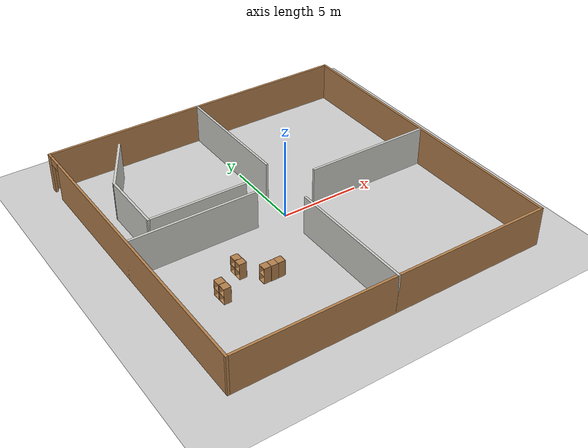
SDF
<sdf version="1.6">
 <world name="default">
  <model name="ground_plane">
   <static>1</static>
   <link name="link">
    <collision name="collision">
     <geometry><plane><normal>0 0 1</normal><size>100 100</size></plane></geometry>
     <surface>
      <contact><collide_bitmask>65535</collide_bitmask></contact>
      <friction><ode><mu>100</mu><mu2>50</mu2></ode></friction>
     </surface>
    </collision>
    <visual name="visual">
     <cast_shadows>0</cast_shadows>
     <geometry><plane><normal>0 0 1</normal><size>100 100</size></plane></geometry>
     <material>
      <script><uri>file://media/materials/scripts/gazebo.material</uri><name>Gazebo/Grey</name></script>
     </material>
    </visual>
   </link>
  </model>
  <model name="Sample_house">
   <link name="Wall_14">
    <collision name="Wall_14_Collision">
     <geometry><box><size>8.15 0.15 2.5</size></box></geometry>
     <pose>0 0 1.25 0 -0 0</pose>
    </collision>
    <visual name="Wall_14_Visual">
     <pose>0 0 1.25 0 -0 0</pose>
     <geometry><box><size>8.15 0.15 2.5</size></box></geometry>
     <material>
      <script><uri>file://media/materials/scripts/gazebo.material</uri><name>Gazebo/CeilingTiled</name></script>
      <ambient>0.435294 0.796078 0.67451 1</ambient>
     </material>
     <meta><layer>0</layer></meta>
    </visual>
    <pose>0 6 0 0 -0 -1.5708</pose>
   </link>
   <link name="Wall_16">
    <collision name="Wall_16_Collision">
     <geometry><box><size>8.15 0.15 2.5</size></box></geometry>
     <pose>0 0 1.25 0 -0 0</pose>
    </collision>
    <visual name="Wall_16_Visual">
     <pose>0 0 1.25 0 -0 0</pose>
     <geometry><box><size>8.15 0.15 2.5</size></box></geometry>
     <material>
      <script><uri>file://media/materials/scripts/gazebo.material</uri><name>Gazebo/CeilingTiled</name></script>
      <ambient>0.435294 0.796078 0.67451 1</ambient>
     </material>
     <meta><layer>0</layer></meta>
    </visual>
    <pose>-6 0 0 0 -0 0</pose>
   </link>
   <link name="Wall_18">
    <collision name="Wall_18_Collision">
     <geometry><box><size>8.15 0.15 2.5</size></box></geometry>
     <pose>0 0 1.25 0 -0 0</pose>
    </collision>
    <visual name="Wall_18_Visual">
     <pose>0 0 1.25 0 -0 0</pose>
     <geometry><box><size>8.15 0.15 2.5</size></box></geometry>
     <material>
      <script><uri>file://media/materials/scripts/gazebo.material</uri><name>Gazebo/CeilingTiled</name></script>
      <ambient>0.435294 0.796078 0.67451 1</ambient>
     </material>
     <meta><layer>0</layer></meta>
    </visual>
    <pose>0 -6 0 0 -0 1.5708</pose>
   </link>
   <link name="Wall_20">
    <collision name="Wall_20_Collision">
     <geometry><box><size>8.15 0.15 2.5</size></box></geometry>
     <pose>0 0 1.25 0 -0 0</pose>
    </collision>
    <visual name="Wall_20_Visual">
     <pose>0 0 1.25 0 -0 0</pose>
     <geometry><box><size>8.15 0.15 2.5</size></box></geometry>
     <material>
      <script><uri>file://media/materials/scripts/gazebo.material</uri><name>Gazebo/CeilingTiled</name></script>
      <ambient>0.435294 0.796078 0.67451 1</ambient>
     </material>
     <meta><layer>0</layer></meta>
    </visual>
    <pose>6 0 0 0 -0 3.14159</pose>
   </link>
   <link name="Wall_22">
    <collision name="Wall_22_Collision">
     <geometry><box><size>6.25 0.15 2.5</size></box></geometry>
     <pose>0 0 1.25 0 -0 0</pose>
    </collision>
    <visual name="Wall_22_Visual">
     <pose>0 0 1.25 0 -0 0</pose>
     <geometry><box><size>6.25 0.15 2.5</size></box></geometry>
     <material>
      <script><uri>file://media/materials/scripts/gazebo.material</uri><name>Gazebo/CeilingTiled</name></script>
      <ambient>0.435294 0.796078 0.67451 1</ambient>
     </material>
     <meta><layer>0</layer></meta>
    </visual>
    <pose>-5.12092 1.03734 0 0 -0 0</pose>
   </link>
   <link name="Wall_24">
    <collision name="Wall_24_Collision">
     <geometry><box><size>4.25 0.15 2.5</size></box></geometry>
     <pose>0 0 1.25 0 -0 0</pose>
    </collision>
    <visual name="Wall_24_Visual">
     <pose>0 0 1.25 0 -0 0</pose>
     <geometry><box><size>4.25 0.15 2.5</size></box></geometry>
     <material>
      <script><uri>file://media/materials/scripts/gazebo.material</uri><name>Gazebo/CeilingTiled</name></script>
      <ambient>0.435294 0.796078 0.67451 1</ambient>
     </material>
     <meta><layer>0</layer></meta>
    </visual>
    <pose>-8.17092 3.08734 0 0 -0 1.5708</pose>
   </link>
   <link name="Wall_25">
    <collision name="Wall_25_Collision">
     <geometry><box><size>4.25 0.15 2.5</size></box></geometry>
     <pose>0 0 1.25 0 -0 0</pose>
    </collision>
    <visual name="Wall_25_Visual">
     <pose>0 0 1.25 0 -0 0</pose>
     <geometry><box><size>4.25 0.15 2.5</size></box></geometry>
     <material>
      <script><uri>file://media/materials/scripts/gazebo.material</uri><name>Gazebo/CeilingTiled</name></script>
      <ambient>0.435294 0.796078 0.67451 1</ambient>
     </material>
     <meta><layer>0</layer></meta>
    </visual>
    <pose>-7.14592 6.91269 0 0 -0 1.0472</pose>
   </link>
   <link name="Wall_5">
    <collision name="Wall_5_Collision">
     <geometry><box><size>20.15 0.15 2.5</size></box></geometry>
     <pose>0 0 1.25 0 -0 0</pose>
    </collision>
    <visual name="Wall_5_Visual">
     <pose>0 0 1.25 0 -0 0</pose>
     <geometry><box><size>20.15 0.15 2.5</size></box></geometry>
     <material>
      <script><uri>file://media/materials/scripts/gazebo.material</uri><name>Gazebo/Wood</name></script>
      <ambient>0.996078 0.47451 0.0196078 1</ambient>
     </material>
     <meta><layer>0</layer></meta>
    </visual>
    <pose>10 0 0 0 -0 -1.5708</pose>
   </link>
   <link name="Wall_6">
    <collision name="Wall_6_Collision">
     <geometry><box><size>20.15 0.15 2.5</size></box></geometry>
     <pose>0 0 1.25 0 -0 0</pose>
    </collision>
    <visual name="Wall_6_Visual">
     <pose>0 0 1.25 0 -0 0</pose>
     <geometry><box><size>20.15 0.15 2.5</size></box></geometry>
     <material>
      <script><uri>file://media/materials/scripts/gazebo.material</uri><name>Gazebo/Wood</name></script>
      <ambient>0.996078 0.47451 0.0196078 1</ambient>
     </material>
     <meta><layer>0</layer></meta>
    </visual>
    <pose>0 -10 0 0 -0 3.14159</pose>
   </link>
   <link name="Wall_7">
    <pose>-10 0 0 0 -0 1.5708</pose>
    <visual name="Wall_7_Visual_0">
     <pose>-0.66033 0 1.25 0 -0 0</pose>
     <geometry><box><size>18.8293 0.15 2.5</size></box></geometry>
     <material>
      <script><uri>file://media/materials/scripts/gazebo.material</uri><name>Gazebo/Wood</name></script>
      <ambient>0.996078 0.47451 0.0196078 1</ambient>
     </material>
     <meta><layer>0</layer></meta>
    </visual>
    <collision name="Wall_7_Collision_0">
     <geometry><box><size>18.8293 0.15 2.5</size></box></geometry>
     <pose>-0.66033 0 1.25 0 -0 0</pose>
    </collision>
    <visual name="Wall_7_Visual_1">
     <pose>9.86467 0 1.25 0 -0 0</pose>
     <geometry><box><size>0.420661 0.15 2.5</size></box></geometry>
     <material>
      <script><uri>file://media/materials/scripts/gazebo.material</uri><name>Gazebo/Wood</name></script>
      <ambient>0.996078 0.47451 0.0196078 1</ambient>
     </material>
     <meta><layer>0</layer></meta>
    </visual>
    <collision name="Wall_7_Collision_1">
     <geometry><box><size>0.420661 0.15 2.5</size></box></geometry>
     <pose>9.86467 0 1.25 0 -0 0</pose>
    </collision>
    <visual name="Wall_7_Visual_2">
     <pose>9.20434 0 2.25 0 -0 0</pose>
     <geometry><box><size>0.9 0.15 0.5</size></box></geometry>
     <material>
      <script><uri>file://media/materials/scripts/gazebo.material</uri><name>Gazebo/Wood</name></script>
      <ambient>0.996078 0.47451 0.0196078 1</ambient>
     </material>
     <meta><layer>0</layer></meta>
    </visual>
    <collision name="Wall_7_Collision_2">
     <geometry><box><size>0.9 0.15 0.5</size></box></geometry>
     <pose>9.20434 0 2.25 0 -0 0</pose>
    </collision>
   </link>
   <link name="Wall_8">
    <collision name="Wall_8_Collision">
     <geometry><box><size>20.15 0.15 2.5</size></box></geometry>
     <pose>0 0 1.25 0 -0 0</pose>
    </collision>
    <visual name="Wall_8_Visual">
     <pose>0 0 1.25 0 -0 0</pose>
     <geometry><box><size>20.15 0.15 2.5</size></box></geometry>
     <material>
      <script><uri>file://media/materials/scripts/gazebo.material</uri><name>Gazebo/Wood</name></script>
      <ambient>0.996078 0.47451 0.0196078 1</ambient>
     </material>
     <meta><layer>0</layer></meta>
    </visual>
    <pose>0 10 0 0 -0 0</pose>
   </link>
   <static>1</static>
  </model>
  <model name="cabinet">
   <static>1</static>
   <link name="cabinet_bottom_plate">
    <inertial>
     <pose>0 0 -1 0 -0 0</pose>
     <inertia><ixx>2.05</ixx><ixy>0</ixy><ixz>0</ixz><iyy>2.05</iyy><iyz>0</iyz><izz>2.05</izz></inertia>
     <mass>25</mass>
    </inertial>
    <collision name="cabinet_bottom_plate_geom">
     <pose>0 0 0.01 0 -0 0</pose>
     <geometry><box><size>0.45 0.45 0.02</size></box></geometry>
    </collision>
    <visual name="cabinet_bottom_plate_geom_visual">
     <pose>0 0 0.01 0 -0 0</pose>
     <geometry><box><size>0.45 0.45 0.02</size></box></geometry>
     <material>
      <script><uri>file://media/materials/scripts/gazebo.material</uri><name>Gazebo/Wood</name></script>
     </material>
    </visual>
    <collision name="cabinet_bottom_plate_geom_cabinet_back_plate">
     <pose>0.235 0 0.51 0 -0 0</pose>
     <geometry><box><size>0.02 0.45 1.02</size></box></geometry>
    </collision>
    <visual name="cabinet_bottom_plate_geom_cabinet_back_plate_visual">
     <pose>0.235 0 0.51 0 -0 0</pose>
     <geometry><box><size>0.02 0.45 1.02</size></box></geometry>
     <material>
      <script><uri>file://media/materials/scripts/gazebo.material</uri><name>Gazebo/Wood</name></script>
     </material>
    </visual>
    <collision name="cabinet_bottom_plate_geom_cabinet_left_plate">
     <pose>0 0.235 0.51 0 -0 0</pose>
     <geometry><box><size>0.45 0.02 1.02</size></box></geometry>
    </collision>
    <visual name="cabinet_bottom_plate_geom_cabinet_left_plate_visual">
     <pose>0 0.235 0.51 0 -0 0</pose>
     <geometry><box><size>0.45 0.02 1.02</size></box></geometry>
     <material>
      <script><uri>file://media/materials/scripts/gazebo.material</uri><name>Gazebo/Wood</name></script>
     </material>
    </visual>
    <collision name="cabinet_bottom_plate_geom_cabinet_middle_plate">
     <pose>0 0 0.51 0 -0 0</pose>
     <geometry><box><size>0.45 0.45 0.02</size></box></geometry>
    </collision>
    <visual name="cabinet_bottom_plate_geom_cabinet_middle_plate_visual">
     <pose>0 0 0.51 0 -0 0</pose>
     <geometry><box><size>0.45 0.45 0.02</size></box></geometry>
     <material>
      <script><uri>file://media/materials/scripts/gazebo.material</uri><name>Gazebo/Wood</name></script>
     </material>
    </visual>
    <collision name="cabinet_bottom_plate_geom_cabinet_right_plate">
     <pose>0 -0.235 0.51 0 -0 0</pose>
     <geometry><box><size>0.45 0.02 1.02</size></box></geometry>
    </collision>
    <visual name="cabinet_bottom_plate_geom_cabinet_right_plate_visual">
     <pose>0 -0.235 0.51 0 -0 0</pose>
     <geometry><box><size>0.45 0.02 1.02</size></box></geometry>
     <material>
      <script><uri>file://media/materials/scripts/gazebo.material</uri><name>Gazebo/Wood</name></script>
     </material>
    </visual>
    <collision name="cabinet_bottom_plate_geom_cabinet_top_plate">
     <pose>0 0 1.01 0 -0 0</pose>
     <geometry><box><size>0.45 0.45 0.02</size></box></geometry>
    </collision>
    <visual name="cabinet_bottom_plate_geom_cabinet_top_plate_visual">
     <pose>0 0 1.01 0 -0 0</pose>
     <geometry><box><size>0.45 0.45 0.02</size></box></geometry>
     <material>
      <script><uri>file://media/materials/scripts/gazebo.material</uri><name>Gazebo/Wood</name></script>
     </material>
    </visual>
   </link>
   <pose>-4.12589 -4.16756 0 0 -0 0</pose>
  </model>
  <model name="cabinet_0">
   <static>1</static>
   <link name="cabinet_bottom_plate">
    <inertial>
     <pose>0 0 -1 0 -0 0</pose>
     <inertia><ixx>2.05</ixx><ixy>0</ixy><ixz>0</ixz><iyy>2.05</iyy><iyz>0</iyz><izz>2.05</izz></inertia>
     <mass>25</mass>
    </inertial>
    <collision name="cabinet_bottom_plate_geom">
     <pose>0 0 0.01 0 -0 0</pose>
     <geometry><box><size>0.45 0.45 0.02</size></box></geometry>
    </collision>
    <visual name="cabinet_bottom_plate_geom_visual">
     <pose>0 0 0.01 0 -0 0</pose>
     <geometry><box><size>0.45 0.45 0.02</size></box></geometry>
     <material>
      <script><uri>file://media/materials/scripts/gazebo.material</uri><name>Gazebo/Wood</name></script>
     </material>
    </visual>
    <collision name="cabinet_bottom_plate_geom_cabinet_back_plate">
     <pose>0.235 0 0.51 0 -0 0</pose>
     <geometry><box><size>0.02 0.45 1.02</size></box></geometry>
    </collision>
    <visual name="cabinet_bottom_plate_geom_cabinet_back_plate_visual">
     <pose>0.235 0 0.51 0 -0 0</pose>
     <geometry><box><size>0.02 0.45 1.02</size></box></geometry>
     <material>
      <script><uri>file://media/materials/scripts/gazebo.material</uri><name>Gazebo/Wood</name></script>
     </material>
    </visual>
    <collision name="cabinet_bottom_plate_geom_cabinet_left_plate">
     <pose>0 0.235 0.51 0 -0 0</pose>
     <geometry><box><size>0.45 0.02 1.02</size></box></geometry>
    </collision>
    <visual name="cabinet_bottom_plate_geom_cabinet_left_plate_visual">
     <pose>0 0.235 0.51 0 -0 0</pose>
     <geometry><box><size>0.45 0.02 1.02</size></box></geometry>
     <material>
      <script><uri>file://media/materials/scripts/gazebo.material</uri><name>Gazebo/Wood</name></script>
     </material>
    </visual>
    <collision name="cabinet_bottom_plate_geom_cabinet_middle_plate">
     <pose>0 0 0.51 0 -0 0</pose>
     <geometry><box><size>0.45 0.45 0.02</size></box></geometry>
    </collision>
    <visual name="cabinet_bottom_plate_geom_cabinet_middle_plate_visual">
     <pose>0 0 0.51 0 -0 0</pose>
     <geometry><box><size>0.45 0.45 0.02</size></box></geometry>
     <material>
      <script><uri>file://media/materials/scripts/gazebo.material</uri><name>Gazebo/Wood</name></script>
     </material>
    </visual>
    <collision name="cabinet_bottom_plate_geom_cabinet_right_plate">
     <pose>0 -0.235 0.51 0 -0 0</pose>
     <geometry><box><size>0.45 0.02 1.02</size></box></geometry>
    </collision>
    <visual name="cabinet_bottom_plate_geom_cabinet_right_plate_visual">
     <pose>0 -0.235 0.51 0 -0 0</pose>
     <geometry><box><size>0.45 0.02 1.02</size></box></geometry>
     <material>
      <script><uri>file://media/materials/scripts/gazebo.material</uri><name>Gazebo/Wood</name></script>
     </material>
    </visual>
    <collision name="cabinet_bottom_plate_geom_cabinet_top_plate">
     <pose>0 0 1.01 0 -0 0</pose>
     <geometry><box><size>0.45 0.45 0.02</size></box></geometry>
    </collision>
    <visual name="cabinet_bottom_plate_geom_cabinet_top_plate_visual">
     <pose>0 0 1.01 0 -0 0</pose>
     <geometry><box><size>0.45 0.45 0.02</size></box></geometry>
     <material>
      <script><uri>file://media/materials/scripts/gazebo.material</uri><name>Gazebo/Wood</name></script>
     </material>
    </visual>
   </link>
   <pose>-3.67632 -4.18228 0 0 -0 0</pose>
  </model>
  <model name="cabinet_1">
   <static>1</static>
   <link name="cabinet_bottom_plate">
    <inertial>
     <pose>0 0 -1 0 -0 0</pose>
     <inertia><ixx>2.05</ixx><ixy>0</ixy><ixz>0</ixz><iyy>2.05</iyy><iyz>0</iyz><izz>2.05</izz></inertia>
     <mass>25</mass>
    </inertial>
    <collision name="cabinet_bottom_plate_geom">
     <pose>0 0 0.01 0 -0 0</pose>
     <geometry><box><size>0.45 0.45 0.02</size></box></geometry>
    </collision>
    <visual name="cabinet_bottom_plate_geom_visual">
     <pose>0 0 0.01 0 -0 0</pose>
     <geometry><box><size>0.45 0.45 0.02</size></box></geometry>
     <material>
      <script><uri>file://media/materials/scripts/gazebo.material</uri><name>Gazebo/Wood</name></script>
     </material>
    </visual>
    <collision name="cabinet_bottom_plate_geom_cabinet_back_plate">
     <pose>0.235 0 0.51 0 -0 0</pose>
     <geometry><box><size>0.02 0.45 1.02</size></box></geometry>
    </collision>
    <visual name="cabinet_bottom_plate_geom_cabinet_back_plate_visual">
     <pose>0.235 0 0.51 0 -0 0</pose>
     <geometry><box><size>0.02 0.45 1.02</size></box></geometry>
     <material>
      <script><uri>file://media/materials/scripts/gazebo.material</uri><name>Gazebo/Wood</name></script>
     </material>
    </visual>
    <collision name="cabinet_bottom_plate_geom_cabinet_left_plate">
     <pose>0 0.235 0.51 0 -0 0</pose>
     <geometry><box><size>0.45 0.02 1.02</size></box></geometry>
    </collision>
    <visual name="cabinet_bottom_plate_geom_cabinet_left_plate_visual">
     <pose>0 0.235 0.51 0 -0 0</pose>
     <geometry><box><size>0.45 0.02 1.02</size></box></geometry>
     <material>
      <script><uri>file://media/materials/scripts/gazebo.material</uri><name>Gazebo/Wood</name></script>
     </material>
    </visual>
    <collision name="cabinet_bottom_plate_geom_cabinet_middle_plate">
     <pose>0 0 0.51 0 -0 0</pose>
     <geometry><box><size>0.45 0.45 0.02</size></box></geometry>
    </collision>
    <visual name="cabinet_bottom_plate_geom_cabinet_middle_plate_visual">
     <pose>0 0 0.51 0 -0 0</pose>
     <geometry><box><size>0.45 0.45 0.02</size></box></geometry>
     <material>
      <script><uri>file://media/materials/scripts/gazebo.material</uri><name>Gazebo/Wood</name></script>
     </material>
    </visual>
    <collision name="cabinet_bottom_plate_geom_cabinet_right_plate">
     <pose>0 -0.235 0.51 0 -0 0</pose>
     <geometry><box><size>0.45 0.02 1.02</size></box></geometry>
    </collision>
    <visual name="cabinet_bottom_plate_geom_cabinet_right_plate_visual">
     <pose>0 -0.235 0.51 0 -0 0</pose>
     <geometry><box><size>0.45 0.02 1.02</size></box></geometry>
     <material>
      <script><uri>file://media/materials/scripts/gazebo.material</uri><name>Gazebo/Wood</name></script>
     </material>
    </visual>
    <collision name="cabinet_bottom_plate_geom_cabinet_top_plate">
     <pose>0 0 1.01 0 -0 0</pose>
     <geometry><box><size>0.45 0.45 0.02</size></box></geometry>
    </collision>
    <visual name="cabinet_bottom_plate_geom_cabinet_top_plate_visual">
     <pose>0 0 1.01 0 -0 0</pose>
     <geometry><box><size>0.45 0.45 0.02</size></box></geometry>
     <material>
      <script><uri>file://media/materials/scripts/gazebo.material</uri><name>Gazebo/Wood</name></script>
     </material>
    </visual>
   </link>
   <pose>-3.23374 -4.17124 0 0 -0 0</pose>
  </model>
  <model name="cabinet_7">
   <static>1</static>
   <link name="cabinet_bottom_plate">
    <inertial>
     <pose>0 0 -1 0 -0 0</pose>
     <inertia><ixx>2.05</ixx><ixy>0</ixy><ixz>0</ixz><iyy>2.05</iyy><iyz>0</iyz><izz>2.05</izz></inertia>
     <mass>25</mass>
    </inertial>
    <collision name="cabinet_bottom_plate_geom">
     <pose>0 0 0.01 0 -0 0</pose>
     <geometry><box><size>0.45 0.45 0.02</size></box></geometry>
    </collision>
    <visual name="cabinet_bottom_plate_geom_visual">
     <pose>0 0 0.01 0 -0 0</pose>
     <geometry><box><size>0.45 0.45 0.02</size></box></geometry>
     <material>
      <script><uri>file://media/materials/scripts/gazebo.material</uri><name>Gazebo/Wood</name></script>
     </material>
    </visual>
    <collision name="cabinet_bottom_plate_geom_cabinet_back_plate">
     <pose>0.235 0 0.51 0 -0 0</pose>
     <geometry><box><size>0.02 0.45 1.02</size></box></geometry>
    </collision>
    <visual name="cabinet_bottom_plate_geom_cabinet_back_plate_visual">
     <pose>0.235 0 0.51 0 -0 0</pose>
     <geometry><box><size>0.02 0.45 1.02</size></box></geometry>
     <material>
      <script><uri>file://media/materials/scripts/gazebo.material</uri><name>Gazebo/Wood</name></script>
     </material>
    </visual>
    <collision name="cabinet_bottom_plate_geom_cabinet_left_plate">
     <pose>0 0.235 0.51 0 -0 0</pose>
     <geometry><box><size>0.45 0.02 1.02</size></box></geometry>
    </collision>
    <visual name="cabinet_bottom_plate_geom_cabinet_left_plate_visual">
     <pose>0 0.235 0.51 0 -0 0</pose>
     <geometry><box><size>0.45 0.02 1.02</size></box></geometry>
     <material>
      <script><uri>file://media/materials/scripts/gazebo.material</uri><name>Gazebo/Wood</name></script>
     </material>
    </visual>
    <collision name="cabinet_bottom_plate_geom_cabinet_middle_plate">
     <pose>0 0 0.51 0 -0 0</pose>
     <geometry><box><size>0.45 0.45 0.02</size></box></geometry>
    </collision>
    <visual name="cabinet_bottom_plate_geom_cabinet_middle_plate_visual">
     <pose>0 0 0.51 0 -0 0</pose>
     <geometry><box><size>0.45 0.45 0.02</size></box></geometry>
     <material>
      <script><uri>file://media/materials/scripts/gazebo.material</uri><name>Gazebo/Wood</name></script>
     </material>
    </visual>
    <collision name="cabinet_bottom_plate_geom_cabinet_right_plate">
     <pose>0 -0.235 0.51 0 -0 0</pose>
     <geometry><box><size>0.45 0.02 1.02</size></box></geometry>
    </collision>
    <visual name="cabinet_bottom_plate_geom_cabinet_right_plate_visual">
     <pose>0 -0.235 0.51 0 -0 0</pose>
     <geometry><box><size>0.45 0.02 1.02</size></box></geometry>
     <material>
      <script><uri>file://media/materials/scripts/gazebo.material</uri><name>Gazebo/Wood</name></script>
     </material>
    </visual>
    <collision name="cabinet_bottom_plate_geom_cabinet_top_plate">
     <pose>0 0 1.01 0 -0 0</pose>
     <geometry><box><size>0.45 0.45 0.02</size></box></geometry>
    </collision>
    <visual name="cabinet_bottom_plate_geom_cabinet_top_plate_visual">
     <pose>0 0 1.01 0 -0 0</pose>
     <geometry><box><size>0.45 0.45 0.02</size></box></geometry>
     <material>
      <script><uri>file://media/materials/scripts/gazebo.material</uri><name>Gazebo/Wood</name></script>
     </material>
    </visual>
   </link>
   <pose>-5.02692 -2.72778 0 0 -0 0</pose>
  </model>
  <model name="cabinet_8">
   <static>1</static>
   <link name="cabinet_bottom_plate">
    <inertial>
     <pose>0 0 -1 0 -0 0</pose>
     <inertia><ixx>2.05</ixx><ixy>0</ixy><ixz>0</ixz><iyy>2.05</iyy><iyz>0</iyz><izz>2.05</izz></inertia>
     <mass>25</mass>
    </inertial>
    <collision name="cabinet_bottom_plate_geom">
     <pose>0 0 0.01 0 -0 0</pose>
     <geometry><box><size>0.45 0.45 0.02</size></box></geometry>
    </collision>
    <visual name="cabinet_bottom_plate_geom_visual">
     <pose>0 0 0.01 0 -0 0</pose>
     <geometry><box><size>0.45 0.45 0.02</size></box></geometry>
     <material>
      <script><uri>file://media/materials/scripts/gazebo.material</uri><name>Gazebo/Wood</name></script>
     </material>
    </visual>
    <collision name="cabinet_bottom_plate_geom_cabinet_back_plate">
     <pose>0.235 0 0.51 0 -0 0</pose>
     <geometry><box><size>0.02 0.45 1.02</size></box></geometry>
    </collision>
    <visual name="cabinet_bottom_plate_geom_cabinet_back_plate_visual">
     <pose>0.235 0 0.51 0 -0 0</pose>
     <geometry><box><size>0.02 0.45 1.02</size></box></geometry>
     <material>
      <script><uri>file://media/materials/scripts/gazebo.material</uri><name>Gazebo/Wood</name></script>
     </material>
    </visual>
    <collision name="cabinet_bottom_plate_geom_cabinet_left_plate">
     <pose>0 0.235 0.51 0 -0 0</pose>
     <geometry><box><size>0.45 0.02 1.02</size></box></geometry>
    </collision>
    <visual name="cabinet_bottom_plate_geom_cabinet_left_plate_visual">
     <pose>0 0.235 0.51 0 -0 0</pose>
     <geometry><box><size>0.45 0.02 1.02</size></box></geometry>
     <material>
      <script><uri>file://media/materials/scripts/gazebo.material</uri><name>Gazebo/Wood</name></script>
     </material>
    </visual>
    <collision name="cabinet_bottom_plate_geom_cabinet_middle_plate">
     <pose>0 0 0.51 0 -0 0</pose>
     <geometry><box><size>0.45 0.45 0.02</size></box></geometry>
    </collision>
    <visual name="cabinet_bottom_plate_geom_cabinet_middle_plate_visual">
     <pose>0 0 0.51 0 -0 0</pose>
     <geometry><box><size>0.45 0.45 0.02</size></box></geometry>
     <material>
      <script><uri>file://media/materials/scripts/gazebo.material</uri><name>Gazebo/Wood</name></script>
     </material>
    </visual>
    <collision name="cabinet_bottom_plate_geom_cabinet_right_plate">
     <pose>0 -0.235 0.51 0 -0 0</pose>
     <geometry><box><size>0.45 0.02 1.02</size></box></geometry>
    </collision>
    <visual name="cabinet_bottom_plate_geom_cabinet_right_plate_visual">
     <pose>0 -0.235 0.51 0 -0 0</pose>
     <geometry><box><size>0.45 0.02 1.02</size></box></geometry>
     <material>
      <script><uri>file://media/materials/scripts/gazebo.material</uri><name>Gazebo/Wood</name></script>
     </material>
    </visual>
    <collision name="cabinet_bottom_plate_geom_cabinet_top_plate">
     <pose>0 0 1.01 0 -0 0</pose>
     <geometry><box><size>0.45 0.45 0.02</size></box></geometry>
    </collision>
    <visual name="cabinet_bottom_plate_geom_cabinet_top_plate_visual">
     <pose>0 0 1.01 0 -0 0</pose>
     <geometry><box><size>0.45 0.45 0.02</size></box></geometry>
     <material>
      <script><uri>file://media/materials/scripts/gazebo.material</uri><name>Gazebo/Wood</name></script>
     </material>
    </visual>
   </link>
   <pose>-6.72622 -4.3907 0 0 -0 0</pose>
  </model>
  <model name="cabinet_9">
   <static>1</static>
   <link name="cabinet_bottom_plate">
    <inertial>
     <pose>0 0 -1 0 -0 0</pose>
     <inertia><ixx>2.05</ixx><ixy>0</ixy><ixz>0</ixz><iyy>2.05</iyy><iyz>0</iyz><izz>2.05</izz></inertia>
     <mass>25</mass>
    </inertial>
    <collision name="cabinet_bottom_plate_geom">
     <pose>0 0 0.01 0 -0 0</pose>
     <geometry><box><size>0.45 0.45 0.02</size></box></geometry>
    </collision>
    <visual name="cabinet_bottom_plate_geom_visual">
     <pose>0 0 0.01 0 -0 0</pose>
     <geometry><box><size>0.45 0.45 0.02</size></box></geometry>
     <material>
      <script><uri>file://media/materials/scripts/gazebo.material</uri><name>Gazebo/Wood</name></script>
     </material>
    </visual>
    <collision name="cabinet_bottom_plate_geom_cabinet_back_plate">
     <pose>0.235 0 0.51 0 -0 0</pose>
     <geometry><box><size>0.02 0.45 1.02</size></box></geometry>
    </collision>
    <visual name="cabinet_bottom_plate_geom_cabinet_back_plate_visual">
     <pose>0.235 0 0.51 0 -0 0</pose>
     <geometry><box><size>0.02 0.45 1.02</size></box></geometry>
     <material>
      <script><uri>file://media/materials/scripts/gazebo.material</uri><name>Gazebo/Wood</name></script>
     </material>
    </visual>
    <collision name="cabinet_bottom_plate_geom_cabinet_left_plate">
     <pose>0 0.235 0.51 0 -0 0</pose>
     <geometry><box><size>0.45 0.02 1.02</size></box></geometry>
    </collision>
    <visual name="cabinet_bottom_plate_geom_cabinet_left_plate_visual">
     <pose>0 0.235 0.51 0 -0 0</pose>
     <geometry><box><size>0.45 0.02 1.02</size></box></geometry>
     <material>
      <script><uri>file://media/materials/scripts/gazebo.material</uri><name>Gazebo/Wood</name></script>
     </material>
    </visual>
    <collision name="cabinet_bottom_plate_geom_cabinet_middle_plate">
     <pose>0 0 0.51 0 -0 0</pose>
     <geometry><box><size>0.45 0.45 0.02</size></box></geometry>
    </collision>
    <visual name="cabinet_bottom_plate_geom_cabinet_middle_plate_visual">
     <pose>0 0 0.51 0 -0 0</pose>
     <geometry><box><size>0.45 0.45 0.02</size></box></geometry>
     <material>
      <script><uri>file://media/materials/scripts/gazebo.material</uri><name>Gazebo/Wood</name></script>
     </material>
    </visual>
    <collision name="cabinet_bottom_plate_geom_cabinet_right_plate">
     <pose>0 -0.235 0.51 0 -0 0</pose>
     <geometry><box><size>0.45 0.02 1.02</size></box></geometry>
    </collision>
    <visual name="cabinet_bottom_plate_geom_cabinet_right_plate_visual">
     <pose>0 -0.235 0.51 0 -0 0</pose>
     <geometry><box><size>0.45 0.02 1.02</size></box></geometry>
     <material>
      <script><uri>file://media/materials/scripts/gazebo.material</uri><name>Gazebo/Wood</name></script>
     </material>
    </visual>
    <collision name="cabinet_bottom_plate_geom_cabinet_top_plate">
     <pose>0 0 1.01 0 -0 0</pose>
     <geometry><box><size>0.45 0.45 0.02</size></box></geometry>
    </collision>
    <visual name="cabinet_bottom_plate_geom_cabinet_top_plate_visual">
     <pose>0 0 1.01 0 -0 0</pose>
     <geometry><box><size>0.45 0.45 0.02</size></box></geometry>
     <material>
      <script><uri>file://media/materials/scripts/gazebo.material</uri><name>Gazebo/Wood</name></script>
     </material>
    </visual>
   </link>
   <pose>-5.01974 -3.15442 0 0 -0 0</pose>
  </model>
  <model name="cabinet_10">
   <static>1</static>
   <link name="cabinet_bottom_plate">
    <inertial>
     <pose>0 0 -1 0 -0 0</pose>
     <inertia><ixx>2.05</ixx><ixy>0</ixy><ixz>0</ixz><iyy>2.05</iyy><iyz>0</iyz><izz>2.05</izz></inertia>
     <mass>25</mass>
    </inertial>
    <collision name="cabinet_bottom_plate_geom">
     <pose>0 0 0.01 0 -0 0</pose>
     <geometry><box><size>0.45 0.45 0.02</size></box></geometry>
    </collision>
    <visual name="cabinet_bottom_plate_geom_visual">
     <pose>0 0 0.01 0 -0 0</pose>
     <geometry><box><size>0.45 0.45 0.02</size></box></geometry>
     <material>
      <script><uri>file://media/materials/scripts/gazebo.material</uri><name>Gazebo/Wood</name></script>
     </material>
    </visual>
    <collision name="cabinet_bottom_plate_geom_cabinet_back_plate">
     <pose>0.235 0 0.51 0 -0 0</pose>
     <geometry><box><size>0.02 0.45 1.02</size></box></geometry>
    </collision>
    <visual name="cabinet_bottom_plate_geom_cabinet_back_plate_visual">
     <pose>0.235 0 0.51 0 -0 0</pose>
     <geometry><box><size>0.02 0.45 1.02</size></box></geometry>
     <material>
      <script><uri>file://media/materials/scripts/gazebo.material</uri><name>Gazebo/Wood</name></script>
     </material>
    </visual>
    <collision name="cabinet_bottom_plate_geom_cabinet_left_plate">
     <pose>0 0.235 0.51 0 -0 0</pose>
     <geometry><box><size>0.45 0.02 1.02</size></box></geometry>
    </collision>
    <visual name="cabinet_bottom_plate_geom_cabinet_left_plate_visual">
     <pose>0 0.235 0.51 0 -0 0</pose>
     <geometry><box><size>0.45 0.02 1.02</size></box></geometry>
     <material>
      <script><uri>file://media/materials/scripts/gazebo.material</uri><name>Gazebo/Wood</name></script>
     </material>
    </visual>
    <collision name="cabinet_bottom_plate_geom_cabinet_middle_plate">
     <pose>0 0 0.51 0 -0 0</pose>
     <geometry><box><size>0.45 0.45 0.02</size></box></geometry>
    </collision>
    <visual name="cabinet_bottom_plate_geom_cabinet_middle_plate_visual">
     <pose>0 0 0.51 0 -0 0</pose>
     <geometry><box><size>0.45 0.45 0.02</size></box></geometry>
     <material>
      <script><uri>file://media/materials/scripts/gazebo.material</uri><name>Gazebo/Wood</name></script>
     </material>
    </visual>
    <collision name="cabinet_bottom_plate_geom_cabinet_right_plate">
     <pose>0 -0.235 0.51 0 -0 0</pose>
     <geometry><box><size>0.45 0.02 1.02</size></box></geometry>
    </collision>
    <visual name="cabinet_bottom_plate_geom_cabinet_right_plate_visual">
     <pose>0 -0.235 0.51 0 -0 0</pose>
     <geometry><box><size>0.45 0.02 1.02</size></box></geometry>
     <material>
      <script><uri>file://media/materials/scripts/gazebo.material</uri><name>Gazebo/Wood</name></script>
     </material>
    </visual>
    <collision name="cabinet_bottom_plate_geom_cabinet_top_plate">
     <pose>0 0 1.01 0 -0 0</pose>
     <geometry><box><size>0.45 0.45 0.02</size></box></geometry>
    </collision>
    <visual name="cabinet_bottom_plate_geom_cabinet_top_plate_visual">
     <pose>0 0 1.01 0 -0 0</pose>
     <geometry><box><size>0.45 0.45 0.02</size></box></geometry>
     <material>
      <script><uri>file://media/materials/scripts/gazebo.material</uri><name>Gazebo/Wood</name></script>
     </material>
    </visual>
   </link>
   <pose>-6.74271 -3.89788 0 0 -0 0</pose>
  </model>
 </world>
</sdf>
